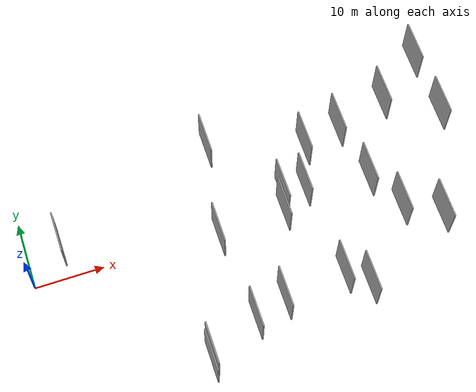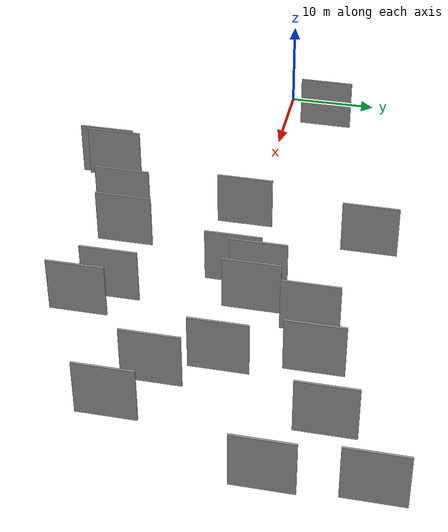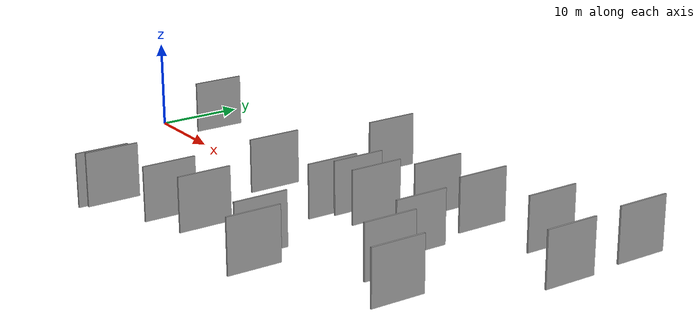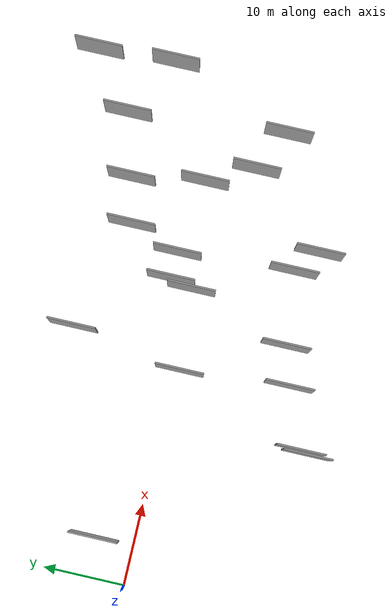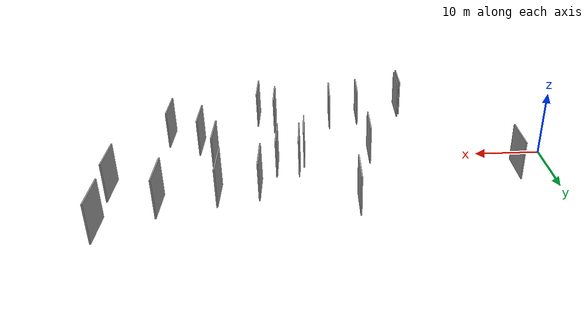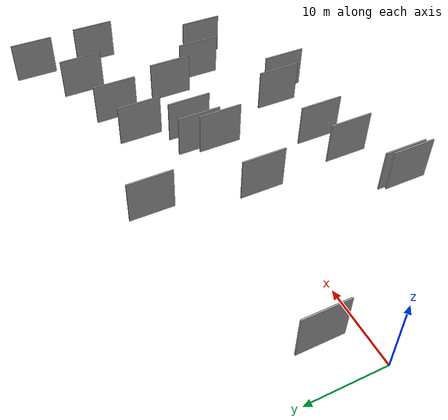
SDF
<sdf version="1.6">
 <world name="default">
  <scene>
   <sky><clouds><speed>12</speed></clouds></sky>
   <ambient>0.4 0.4 0.4 1</ambient>
   <background>0.7 0.7 0.7 1</background>
   <shadows>1</shadows>
  </scene>
  <gravity>0 0 -9.8066</gravity>
  <magnetic_field>6e-06 2.3e-05 -4.2e-05</magnetic_field>
  <physics default="0" name="default_physics" type="ode">
   <ode>
    <solver>
     <type>quick</type>
     <iters>10</iters>
     <sor>1.0</sor>
     <use_dynamic_moi_rescaling>0</use_dynamic_moi_rescaling>
    </solver>
    <constraints>
     <cfm>0</cfm>
     <erp>0.2</erp>
     <contact_max_correcting_vel>100</contact_max_correcting_vel>
     <contact_surface_layer>0.001</contact_surface_layer>
    </constraints>
   </ode>
   <max_step_size>0.004</max_step_size>
   <real_time_factor>1</real_time_factor>
   <real_time_update_rate>250</real_time_update_rate>
  </physics>
  <light name="sun" type="directional">
   <pose>0 0 10 0 0 0</pose>
   <diffuse>0.8 0.8 0.8 1</diffuse>
   <specular>0.2 0.2 0.2 1</specular>
   <attenuation>
    <range>1000</range>
    <constant>0.9</constant>
    <linear>0.01</linear>
    <quadratic>0.001</quadratic>
   </attenuation>
   <direction>-0.5 0.1 -0.9</direction>
  </light>
  <model name="grey_wall_1">
   <static>1</static>
   <pose>29.2783 13.1749 0.0 0.000000 0.000000 1.570796</pose>
   <link name="link">
    <pose>0 0 3.00 0 0 0</pose>
    <collision name="collision"><geometry><box><size>6.00 0.2 6.00</size></box></geometry></collision>
    <visual name="visual">
     <cast_shadows>0</cast_shadows>
     <geometry><box><size>6.00 0.2 6.00</size></box></geometry>
     <material>
      <script>
       <uri>model://grey_wall/materials/scripts</uri>
       <uri>model://grey_wall/materials/textures</uri>
       <name>vrc/grey_wall</name>
      </script>
     </material>
    </visual>
   </link>
  </model>
  <model name="grey_wall_2">
   <static>1</static>
   <pose>20.3246 -17.9735 0.0 0.000000 0.000000 1.570796</pose>
   <link name="link">
    <pose>0 0 3.00 0 0 0</pose>
    <collision name="collision"><geometry><box><size>6.00 0.2 6.00</size></box></geometry></collision>
    <visual name="visual">
     <cast_shadows>0</cast_shadows>
     <geometry><box><size>6.00 0.2 6.00</size></box></geometry>
     <material>
      <script>
       <uri>model://grey_wall/materials/scripts</uri>
       <uri>model://grey_wall/materials/textures</uri>
       <name>vrc/grey_wall</name>
      </script>
     </material>
    </visual>
   </link>
  </model>
  <model name="grey_wall_3">
   <static>1</static>
   <pose>64.2365 8.3479 0.0 0.000000 0.000000 1.570796</pose>
   <link name="link">
    <pose>0 0 3.00 0 0 0</pose>
    <collision name="collision"><geometry><box><size>6.00 0.2 6.00</size></box></geometry></collision>
    <visual name="visual">
     <cast_shadows>0</cast_shadows>
     <geometry><box><size>6.00 0.2 6.00</size></box></geometry>
     <material>
      <script>
       <uri>model://grey_wall/materials/scripts</uri>
       <uri>model://grey_wall/materials/textures</uri>
       <name>vrc/grey_wall</name>
      </script>
     </material>
    </visual>
   </link>
  </model>
  <model name="grey_wall_4">
   <static>1</static>
   <pose>48.8033 10.4102 0.0 0.000000 0.000000 1.570796</pose>
   <link name="link">
    <pose>0 0 3.00 0 0 0</pose>
    <collision name="collision"><geometry><box><size>6.00 0.2 6.00</size></box></geometry></collision>
    <visual name="visual">
     <cast_shadows>0</cast_shadows>
     <geometry><box><size>6.00 0.2 6.00</size></box></geometry>
     <material>
      <script>
       <uri>model://grey_wall/materials/scripts</uri>
       <uri>model://grey_wall/materials/textures</uri>
       <name>vrc/grey_wall</name>
      </script>
     </material>
    </visual>
   </link>
  </model>
  <model name="grey_wall_5">
   <static>1</static>
   <pose>5.0657 4.8053 0.0 0.000000 0.000000 1.570796</pose>
   <link name="link">
    <pose>0 0 3.00 0 0 0</pose>
    <collision name="collision"><geometry><box><size>6.00 0.2 6.00</size></box></geometry></collision>
    <visual name="visual">
     <cast_shadows>0</cast_shadows>
     <geometry><box><size>6.00 0.2 6.00</size></box></geometry>
     <material>
      <script>
       <uri>model://grey_wall/materials/scripts</uri>
       <uri>model://grey_wall/materials/textures</uri>
       <name>vrc/grey_wall</name>
      </script>
     </material>
    </visual>
   </link>
  </model>
  <model name="grey_wall_6">
   <static>1</static>
   <pose>37.6219 2.8394 0.0 0.000000 0.000000 1.570796</pose>
   <link name="link">
    <pose>0 0 3.00 0 0 0</pose>
    <collision name="collision"><geometry><box><size>6.00 0.2 6.00</size></box></geometry></collision>
    <visual name="visual">
     <cast_shadows>0</cast_shadows>
     <geometry><box><size>6.00 0.2 6.00</size></box></geometry>
     <material>
      <script>
       <uri>model://grey_wall/materials/scripts</uri>
       <uri>model://grey_wall/materials/textures</uri>
       <name>vrc/grey_wall</name>
      </script>
     </material>
    </visual>
   </link>
  </model>
  <model name="grey_wall_7">
   <static>1</static>
   <pose>41.8556 -11.6013 0.0 0.000000 0.000000 1.570796</pose>
   <link name="link">
    <pose>0 0 3.00 0 0 0</pose>
    <collision name="collision"><geometry><box><size>6.00 0.2 6.00</size></box></geometry></collision>
    <visual name="visual">
     <cast_shadows>0</cast_shadows>
     <geometry><box><size>6.00 0.2 6.00</size></box></geometry>
     <material>
      <script>
       <uri>model://grey_wall/materials/scripts</uri>
       <uri>model://grey_wall/materials/textures</uri>
       <name>vrc/grey_wall</name>
      </script>
     </material>
    </visual>
   </link>
  </model>
  <model name="grey_wall_8">
   <static>1</static>
   <pose>58.4100 -7.2657 0.0 0.000000 0.000000 1.570796</pose>
   <link name="link">
    <pose>0 0 3.00 0 0 0</pose>
    <collision name="collision"><geometry><box><size>6.00 0.2 6.00</size></box></geometry></collision>
    <visual name="visual">
     <cast_shadows>0</cast_shadows>
     <geometry><box><size>6.00 0.2 6.00</size></box></geometry>
     <material>
      <script>
       <uri>model://grey_wall/materials/scripts</uri>
       <uri>model://grey_wall/materials/textures</uri>
       <name>vrc/grey_wall</name>
      </script>
     </material>
    </visual>
   </link>
  </model>
  <model name="grey_wall_9">
   <static>1</static>
   <pose>32.6485 -12.6439 0.0 0.000000 0.000000 1.570796</pose>
   <link name="link">
    <pose>0 0 3.00 0 0 0</pose>
    <collision name="collision"><geometry><box><size>6.00 0.2 6.00</size></box></geometry></collision>
    <visual name="visual">
     <cast_shadows>0</cast_shadows>
     <geometry><box><size>6.00 0.2 6.00</size></box></geometry>
     <material>
      <script>
       <uri>model://grey_wall/materials/scripts</uri>
       <uri>model://grey_wall/materials/textures</uri>
       <name>vrc/grey_wall</name>
      </script>
     </material>
    </visual>
   </link>
  </model>
  <model name="grey_wall_10">
   <static>1</static>
   <pose>20.7093 -17.0665 0.0 0.000000 0.000000 1.570796</pose>
   <link name="link">
    <pose>0 0 3.00 0 0 0</pose>
    <collision name="collision"><geometry><box><size>6.00 0.2 6.00</size></box></geometry></collision>
    <visual name="visual">
     <cast_shadows>0</cast_shadows>
     <geometry><box><size>6.00 0.2 6.00</size></box></geometry>
     <material>
      <script>
       <uri>model://grey_wall/materials/scripts</uri>
       <uri>model://grey_wall/materials/textures</uri>
       <name>vrc/grey_wall</name>
      </script>
     </material>
    </visual>
   </link>
  </model>
  <model name="grey_wall_11">
   <static>1</static>
   <pose>53.2182 -4.3628 0.0 0.000000 0.000000 1.570796</pose>
   <link name="link">
    <pose>0 0 3.00 0 0 0</pose>
    <collision name="collision"><geometry><box><size>6.00 0.2 6.00</size></box></geometry></collision>
    <visual name="visual">
     <cast_shadows>0</cast_shadows>
     <geometry><box><size>6.00 0.2 6.00</size></box></geometry>
     <material>
      <script>
       <uri>model://grey_wall/materials/scripts</uri>
       <uri>model://grey_wall/materials/textures</uri>
       <name>vrc/grey_wall</name>
      </script>
     </material>
    </visual>
   </link>
  </model>
  <model name="grey_wall_12">
   <static>1</static>
   <pose>44.7602 -14.1546 0.0 0.000000 0.000000 1.570796</pose>
   <link name="link">
    <pose>0 0 3.00 0 0 0</pose>
    <collision name="collision"><geometry><box><size>6.00 0.2 6.00</size></box></geometry></collision>
    <visual name="visual">
     <cast_shadows>0</cast_shadows>
     <geometry><box><size>6.00 0.2 6.00</size></box></geometry>
     <material>
      <script>
       <uri>model://grey_wall/materials/scripts</uri>
       <uri>model://grey_wall/materials/textures</uri>
       <name>vrc/grey_wall</name>
      </script>
     </material>
    </visual>
   </link>
  </model>
  <model name="grey_wall_13">
   <static>1</static>
   <pose>27.9361 -14.0959 0.0 0.000000 0.000000 1.570796</pose>
   <link name="link">
    <pose>0 0 3.00 0 0 0</pose>
    <collision name="collision"><geometry><box><size>6.00 0.2 6.00</size></box></geometry></collision>
    <visual name="visual">
     <cast_shadows>0</cast_shadows>
     <geometry><box><size>6.00 0.2 6.00</size></box></geometry>
     <material>
      <script>
       <uri>model://grey_wall/materials/scripts</uri>
       <uri>model://grey_wall/materials/textures</uri>
       <name>vrc/grey_wall</name>
      </script>
     </material>
    </visual>
   </link>
  </model>
  <model name="grey_wall_14">
   <static>1</static>
   <pose>26.8473 -0.7166 0.0 0.000000 0.000000 1.570796</pose>
   <link name="link">
    <pose>0 0 3.00 0 0 0</pose>
    <collision name="collision"><geometry><box><size>6.00 0.2 6.00</size></box></geometry></collision>
    <visual name="visual">
     <cast_shadows>0</cast_shadows>
     <geometry><box><size>6.00 0.2 6.00</size></box></geometry>
     <material>
      <script>
       <uri>model://grey_wall/materials/scripts</uri>
       <uri>model://grey_wall/materials/textures</uri>
       <name>vrc/grey_wall</name>
      </script>
     </material>
    </visual>
   </link>
  </model>
  <model name="grey_wall_15">
   <static>1</static>
   <pose>40.9460 2.7938 0.0 0.000000 0.000000 1.570796</pose>
   <link name="link">
    <pose>0 0 3.00 0 0 0</pose>
    <collision name="collision"><geometry><box><size>6.00 0.2 6.00</size></box></geometry></collision>
    <visual name="visual">
     <cast_shadows>0</cast_shadows>
     <geometry><box><size>6.00 0.2 6.00</size></box></geometry>
     <material>
      <script>
       <uri>model://grey_wall/materials/scripts</uri>
       <uri>model://grey_wall/materials/textures</uri>
       <name>vrc/grey_wall</name>
      </script>
     </material>
    </visual>
   </link>
  </model>
  <model name="grey_wall_16">
   <static>1</static>
   <pose>56.6864 12.6894 0.0 0.000000 0.000000 1.570796</pose>
   <link name="link">
    <pose>0 0 3.00 0 0 0</pose>
    <collision name="collision"><geometry><box><size>6.00 0.2 6.00</size></box></geometry></collision>
    <visual name="visual">
     <cast_shadows>0</cast_shadows>
     <geometry><box><size>6.00 0.2 6.00</size></box></geometry>
     <material>
      <script>
       <uri>model://grey_wall/materials/scripts</uri>
       <uri>model://grey_wall/materials/textures</uri>
       <name>vrc/grey_wall</name>
      </script>
     </material>
    </visual>
   </link>
  </model>
  <model name="grey_wall_17">
   <static>1</static>
   <pose>36.9061 0.1240 0.0 0.000000 0.000000 1.570796</pose>
   <link name="link">
    <pose>0 0 3.00 0 0 0</pose>
    <collision name="collision"><geometry><box><size>6.00 0.2 6.00</size></box></geometry></collision>
    <visual name="visual">
     <cast_shadows>0</cast_shadows>
     <geometry><box><size>6.00 0.2 6.00</size></box></geometry>
     <material>
      <script>
       <uri>model://grey_wall/materials/scripts</uri>
       <uri>model://grey_wall/materials/textures</uri>
       <name>vrc/grey_wall</name>
      </script>
     </material>
    </visual>
   </link>
  </model>
  <model name="grey_wall_18">
   <static>1</static>
   <pose>50.3098 1.4574 0.0 0.000000 0.000000 1.570796</pose>
   <link name="link">
    <pose>0 0 3.00 0 0 0</pose>
    <collision name="collision"><geometry><box><size>6.00 0.2 6.00</size></box></geometry></collision>
    <visual name="visual">
     <cast_shadows>0</cast_shadows>
     <geometry><box><size>6.00 0.2 6.00</size></box></geometry>
     <material>
      <script>
       <uri>model://grey_wall/materials/scripts</uri>
       <uri>model://grey_wall/materials/textures</uri>
       <name>vrc/grey_wall</name>
      </script>
     </material>
    </visual>
   </link>
  </model>
  <model name="grey_wall_19">
   <static>1</static>
   <pose>63.7422 17.9629 0.0 0.000000 0.000000 1.570796</pose>
   <link name="link">
    <pose>0 0 3.00 0 0 0</pose>
    <collision name="collision"><geometry><box><size>6.00 0.2 6.00</size></box></geometry></collision>
    <visual name="visual">
     <cast_shadows>0</cast_shadows>
     <geometry><box><size>6.00 0.2 6.00</size></box></geometry>
     <material>
      <script>
       <uri>model://grey_wall/materials/scripts</uri>
       <uri>model://grey_wall/materials/textures</uri>
       <name>vrc/grey_wall</name>
      </script>
     </material>
    </visual>
   </link>
  </model>
  <model name="grey_wall_20">
   <static>1</static>
   <pose>43.1114 9.0576 0.0 0.000000 0.000000 1.570796</pose>
   <link name="link">
    <pose>0 0 3.00 0 0 0</pose>
    <collision name="collision"><geometry><box><size>6.00 0.2 6.00</size></box></geometry></collision>
    <visual name="visual">
     <cast_shadows>0</cast_shadows>
     <geometry><box><size>6.00 0.2 6.00</size></box></geometry>
     <material>
      <script>
       <uri>model://grey_wall/materials/scripts</uri>
       <uri>model://grey_wall/materials/textures</uri>
       <name>vrc/grey_wall</name>
      </script>
     </material>
    </visual>
   </link>
  </model>
 </world>
</sdf>
